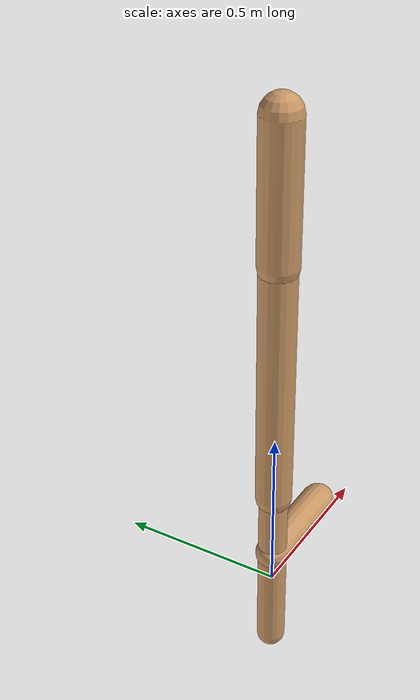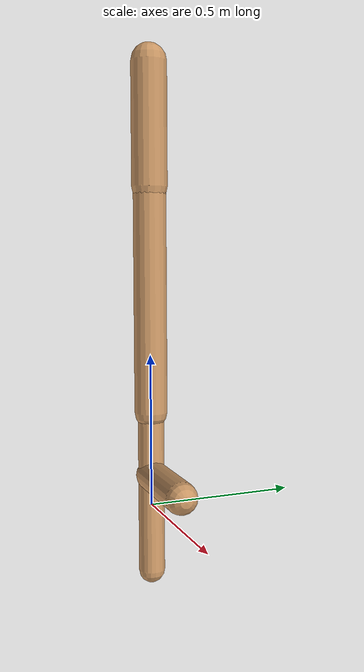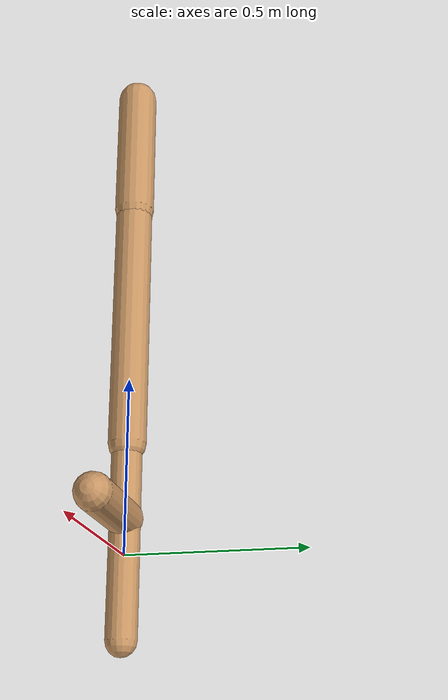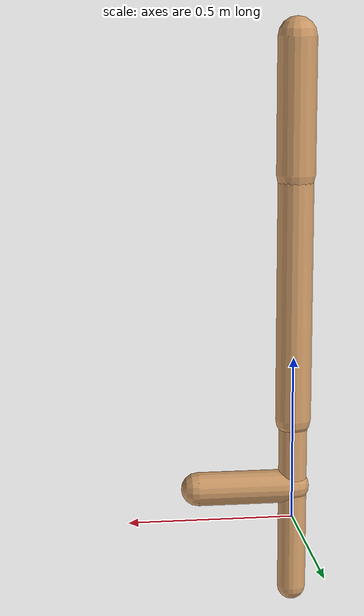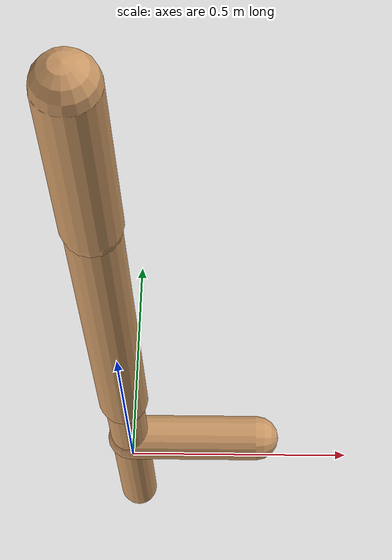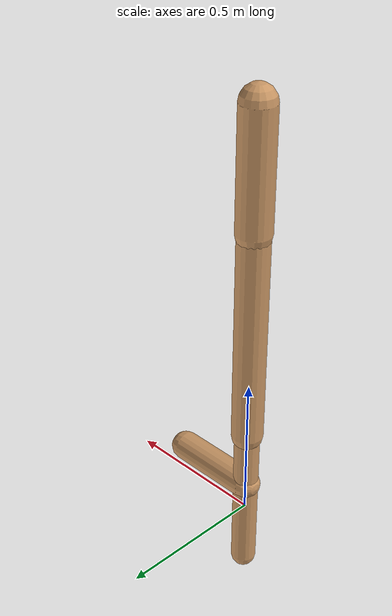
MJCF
<mujoco model="walker2d">
  <compiler angle="degree" coordinate="global" inertiafromgeom="true" />
  <default>
    <joint armature="0.01" damping=".1" limited="true" />
    <geom conaffinity="0" condim="3" contype="1" density="1000" friction="0.8 .1 .1" rgba="0.8 0.6 .4 1" />
  </default>
  <option integrator="RK4" timestep="0.002" />
  <worldbody>

    <body name="torso" pos="0 0 0.6111261142732195">
      <joint armature="0" axis="1 0 0" damping="0" limited="false" name="ignorex" pos="0 0 0" stiffness="0" type="slide" />
      <joint armature="0" axis="0 0 1" damping="0" limited="false" name="ignorez" pos="0 0 0" ref="1.25" stiffness="0" type="slide" />
      <joint armature="0" axis="0 1 0" damping="0" limited="false" name="ignorey" pos="0 0 0" stiffness="0" type="hinge" />
      <geom fromto="0 0 1.45 0 0 1.05" name="torso_geom" size="0.05825272215476464" type="capsule" />
      <body name="thigh">
        <joint axis="0 -1 0" name="thigh_joint" pos="0 0 1.05" range="-150 0" type="hinge" />
        <geom fromto="0.0 0.0 1.05 0.0 0.0 0.31051920902847496" name="thigh_geom" size="0.053675604147112393" type="capsule" />
        <body name="leg" pos="0.0 0.0 -0.289480790971525">
          <joint axis="0 -1 0" name="leg_joint" pos="0 0 0.6" range="-150 0" type="hinge" />
          <geom fromto="0.0 0.0 0.6 0.0 0.0 -0.22164532330169442" name="leg_geom" size="0.04294048331768991" type="capsule" />
          <body name="foot" pos="0.0 0.0 -0.32164532330169443">
            <joint axis="0 -1 0" name="foot_joint" pos="0 0 0.1" range="-45 45" type="hinge" />
            <geom fromto="-0.0 0.0 0.1 0.2898772777900847 0.0 0.1" name="foot_geom" size="0.050755135867061596" type="capsule" />
          </body>
        </body>
      </body>

      <body name="thigh_left">
        <joint axis="0 -1 0" name="thigh_left_joint" pos="0 0 1.05" range="-150 0" type="hinge" />
        <geom fromto="0.0 0.0 1.05 0.0 0.0 0.31051920902847496" name="thigh_left_geom" rgba=".7 .3 .6 1" size="0.053675604147112393" type="capsule" />
        <body name="leg_left" pos="0.0 0.0 -0.289480790971525">
          <joint axis="0 -1 0" name="leg_left_joint" pos="0 0 0.6" range="-150 0" type="hinge" />
          <geom fromto="0.0 0.0 0.6 0.0 0.0 -0.22164532330169442" name="leg_left_geom" rgba=".7 .3 .6 1" size="0.04294048331768991" type="capsule" />
          <body name="foot_left" pos="0.0 0.0 -0.32164532330169443">
            <joint axis="0 -1 0" name="foot_left_joint" pos="0 0 0.1" range="-45 45" type="hinge" />
            <geom fromto="-0.0 0.0 0.1 0.2898772777900847 0.0 0.1" name="foot_left_geom" rgba=".7 .3 .6 1" size="0.050755135867061596" type="capsule" />
          </body>
        </body>
      </body>
    </body>
  </worldbody>
  <actuator>

    <motor ctrllimited="true" ctrlrange="-1.0 1.0" gear="100" joint="thigh_joint" />
    <motor ctrllimited="true" ctrlrange="-1.0 1.0" gear="100" joint="leg_joint" />
    <motor ctrllimited="true" ctrlrange="-1.0 1.0" gear="100" joint="foot_joint" />
    <motor ctrllimited="true" ctrlrange="-1.0 1.0" gear="100" joint="thigh_left_joint" />
    <motor ctrllimited="true" ctrlrange="-1.0 1.0" gear="100" joint="leg_left_joint" />
    <motor ctrllimited="true" ctrlrange="-1.0 1.0" gear="100" joint="foot_left_joint" />

  </actuator>
</mujoco>
